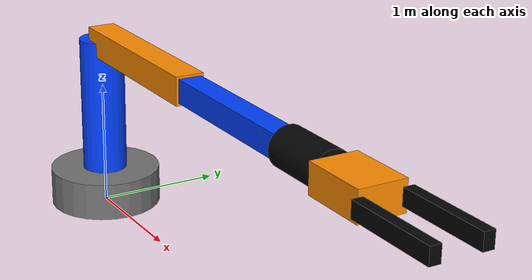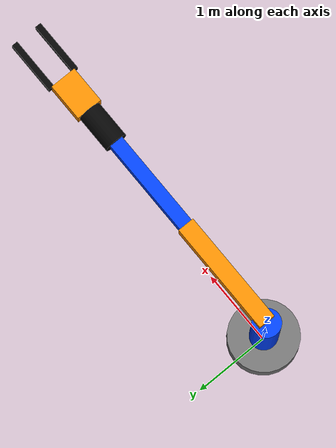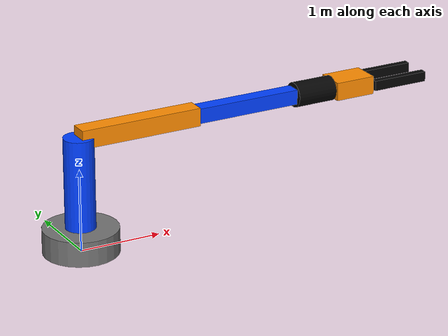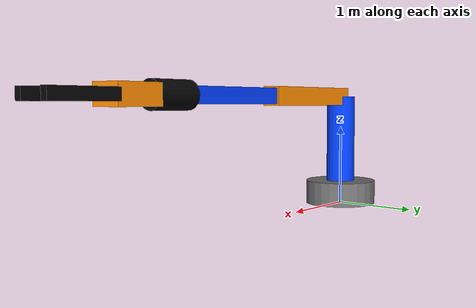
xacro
<?xml version="1.0"?>
<robot xmlns:xacro="http://www.ros.org/wiki/xacro" name="clean_robot_arm">
    <xacro:arg name="initial_positions_file" default="initial_positions.yaml" />

    <!-- Import clean_robot_arm urdf file -->
    <xacro:include filename="$(find robot_arm_clean_description)/urdf/clean_robot_arm.urdf.xacro" />

    <!-- Import control_xacro -->
    <xacro:include filename="clean_robot_arm.ros2_control.xacro" />

    <xacro:clean_robot_arm_ros2_control name="FakeSystem" initial_positions_file="$(arg initial_positions_file)"/>

</robot>

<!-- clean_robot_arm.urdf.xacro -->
<robot xmlns:xacro="http://www.ros.org/wiki/xacro" name="clean_robot_arm">

  <material name="base_grey">
    <color rgba="0.45 0.45 0.45 1"/>
  </material>

  <material name="arm_blue">
    <color rgba="0.0 0.25 1.0 1"/>
  </material>

  <material name="arm_orange">
    <color rgba="1.0 0.55 0.0 1"/>
  </material>

  <material name="gripper_black">
    <color rgba="0.02 0.02 0.02 1"/>
  </material>

  <!-- World frame -->
  <link name="world"/>

  <!-- Base -->
  <link name="base_link">
    <visual>
      <origin xyz="0 0 0.15" rpy="0 0 0"/>
      <geometry>
        <cylinder radius="0.45" length="0.30"/>
      </geometry>
      <material name="base_grey"/>
    </visual>
    <collision>
      <origin xyz="0 0 0.15" rpy="0 0 0"/>
      <geometry>
        <cylinder radius="0.45" length="0.30"/>
      </geometry>
    </collision>
    <inertial>
      <origin xyz="0 0 0.15"/>
      <mass value="5.0"/>
      <inertia ixx="0.1" ixy="0" ixz="0" iyy="0.1" iyz="0" izz="0.1"/>
    </inertial>
  </link>

  <joint name="world_to_base" type="fixed">
    <parent link="world"/>
    <child link="base_link"/>
    <origin xyz="0 0 0" rpy="0 0 0"/>
  </joint>

  <!-- Shoulder vertical column -->
  <link name="shoulder_link">
    <visual>
      <origin xyz="0 0 0.55" rpy="0 0 0"/>
      <geometry>
        <cylinder radius="0.18" length="1.10"/>
      </geometry>
      <material name="arm_blue"/>
    </visual>
    <collision>
      <origin xyz="0 0 0.55" rpy="0 0 0"/>
      <geometry>
        <cylinder radius="0.18" length="1.10"/>
      </geometry>
    </collision>
    <inertial>
      <origin xyz="0 0 0.55"/>
      <mass value="3.0"/>
      <inertia ixx="0.05" ixy="0" ixz="0" iyy="0.05" iyz="0" izz="0.05"/>
    </inertial>
  </link>

  <joint name="joint1" type="revolute">
    <parent link="base_link"/>
    <child link="shoulder_link"/>
    <origin xyz="0 0 0.30" rpy="0 0 0"/>
    <axis xyz="0 0 1"/>
    <limit lower="-3.14" upper="3.14" effort="50" velocity="1.0"/>
  </joint>

  <!-- Upper arm -->
  <link name="upper_arm_link">
    <visual>
      <origin xyz="0.75 0 0" rpy="0 0 0"/>
      <geometry>
        <box size="1.50 0.22 0.22"/>
      </geometry>
      <material name="arm_orange"/>
    </visual>
    <collision>
      <origin xyz="0.75 0 0" rpy="0 0 0"/>
      <geometry>
        <box size="1.50 0.22 0.22"/>
      </geometry>
    </collision>
    <inertial>
      <origin xyz="0.75 0 0"/>
      <mass value="2.5"/>
      <inertia ixx="0.04" ixy="0" ixz="0" iyy="0.04" iyz="0" izz="0.04"/>
    </inertial>
  </link>

  <joint name="joint2" type="revolute">
    <parent link="shoulder_link"/>
    <child link="upper_arm_link"/>
    <origin xyz="0 0 1.10" rpy="0 0 0"/>
    <axis xyz="0 1 0"/>
    <limit lower="-1.57" upper="1.57" effort="50" velocity="1.0"/>
  </joint>

  <!-- Forearm -->
  <link name="forearm_link">
    <visual>
      <origin xyz="0.65 0 0" rpy="0 0 0"/>
      <geometry>
        <box size="1.30 0.18 0.18"/>
      </geometry>
      <material name="arm_blue"/>
    </visual>
    <collision>
      <origin xyz="0.65 0 0" rpy="0 0 0"/>
      <geometry>
        <box size="1.30 0.18 0.18"/>
      </geometry>
    </collision>
    <inertial>
      <origin xyz="0.65 0 0"/>
      <mass value="2.0"/>
      <inertia ixx="0.03" ixy="0" ixz="0" iyy="0.03" iyz="0" izz="0.03"/>
    </inertial>
  </link>

  <joint name="joint3" type="revolute">
    <parent link="upper_arm_link"/>
    <child link="forearm_link"/>
    <origin xyz="1.50 0 0" rpy="0 0 0"/>
    <axis xyz="0 1 0"/>
    <limit lower="-1.57" upper="1.57" effort="50" velocity="1.0"/>
  </joint>

  <!-- Wrist -->
  <link name="wrist_link">
    <visual>
      <origin xyz="0.25 0 0" rpy="0 1.5708 0"/>
      <geometry>
        <cylinder radius="0.15" length="0.50"/>
      </geometry>
      <material name="gripper_black"/>
    </visual>
    <collision>
      <origin xyz="0.25 0 0" rpy="0 1.5708 0"/>
      <geometry>
        <cylinder radius="0.15" length="0.50"/>
      </geometry>
    </collision>
    <inertial>
      <origin xyz="0.25 0 0"/>
      <mass value="1.0"/>
      <inertia ixx="0.02" ixy="0" ixz="0" iyy="0.02" iyz="0" izz="0.02"/>
    </inertial>
  </link>

  <joint name="joint4" type="revolute">
    <parent link="forearm_link"/>
    <child link="wrist_link"/>
    <origin xyz="1.30 0 0" rpy="0 0 0"/>
    <axis xyz="0 1 0"/>
    <limit lower="-1.57" upper="1.57" effort="30" velocity="1.0"/>
  </joint>

  <!-- Gripper palm -->
  <link name="gripper_link">
    <visual>
      <origin xyz="0.25 0 0" rpy="0 0 0"/>
      <geometry>
        <box size="0.50 0.35 0.22"/>
      </geometry>
      <material name="arm_orange"/>
    </visual>
    <collision>
      <origin xyz="0.25 0 0" rpy="0 0 0"/>
      <geometry>
        <box size="0.50 0.35 0.22"/>
      </geometry>
    </collision>
    <inertial>
      <origin xyz="0.25 0 0"/>
      <mass value="1.0"/>
      <inertia ixx="0.02" ixy="0" ixz="0" iyy="0.02" iyz="0" izz="0.02"/>
    </inertial>
  </link>

  <joint name="joint5" type="revolute">
    <parent link="wrist_link"/>
    <child link="gripper_link"/>
    <origin xyz="0.50 0 0" rpy="0 0 0"/>
    <axis xyz="1 0 0"/>
    <limit lower="-1.57" upper="1.57" effort="30" velocity="1.0"/>
  </joint>

  <!-- Left gripper finger -->
  <link name="left_finger_link">
    <visual>
      <origin xyz="0.35 0.18 0" rpy="0 0 0"/>
      <geometry>
        <box size="0.70 0.08 0.12"/>
      </geometry>
      <material name="gripper_black"/>
    </visual>
    <collision>
      <origin xyz="0.35 0.18 0" rpy="0 0 0"/>
      <geometry>
        <box size="0.70 0.08 0.12"/>
      </geometry>
    </collision>
    <inertial>
      <origin xyz="0.35 0.18 0"/>
      <mass value="0.3"/>
      <inertia ixx="0.005" ixy="0" ixz="0" iyy="0.005" iyz="0" izz="0.005"/>
    </inertial>
  </link>

  <joint name="left_finger_joint" type="fixed">
    <parent link="gripper_link"/>
    <child link="left_finger_link"/>
    <origin xyz="0.50 0 0" rpy="0 0 0"/>
  </joint>

  <!-- Right gripper finger -->
  <link name="right_finger_link">
    <visual>
      <origin xyz="0.35 -0.18 0" rpy="0 0 0"/>
      <geometry>
        <box size="0.70 0.08 0.12"/>
      </geometry>
      <material name="gripper_black"/>
    </visual>
    <collision>
      <origin xyz="0.35 -0.18 0" rpy="0 0 0"/>
      <geometry>
        <box size="0.70 0.08 0.12"/>
      </geometry>
    </collision>
    <inertial>
      <origin xyz="0.35 -0.18 0"/>
      <mass value="0.3"/>
      <inertia ixx="0.005" ixy="0" ixz="0" iyy="0.005" iyz="0" izz="0.005"/>
    </inertial>
  </link>

  <joint name="right_finger_joint" type="fixed">
    <parent link="gripper_link"/>
    <child link="right_finger_link"/>
    <origin xyz="0.50 0 0" rpy="0 0 0"/>
  </joint>

</robot>
